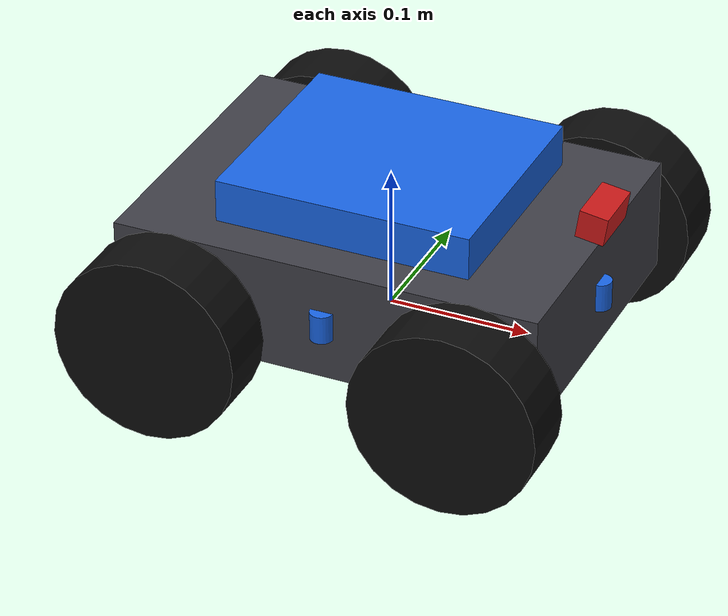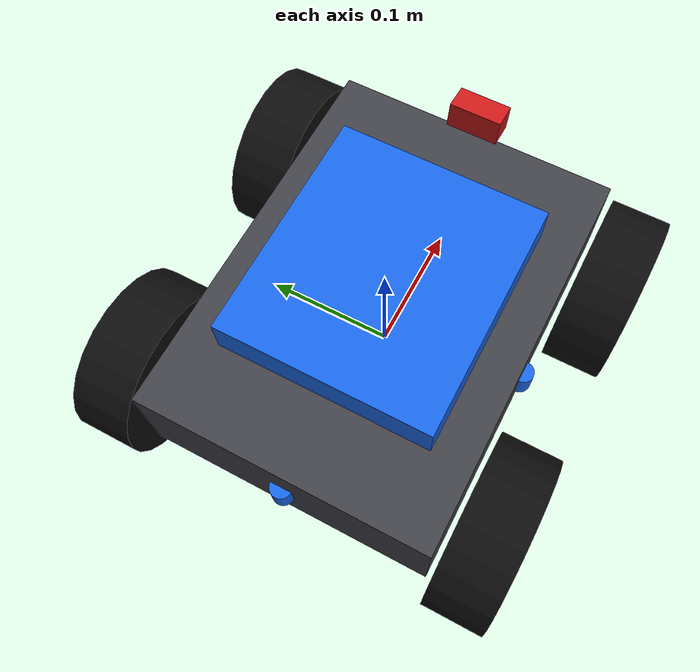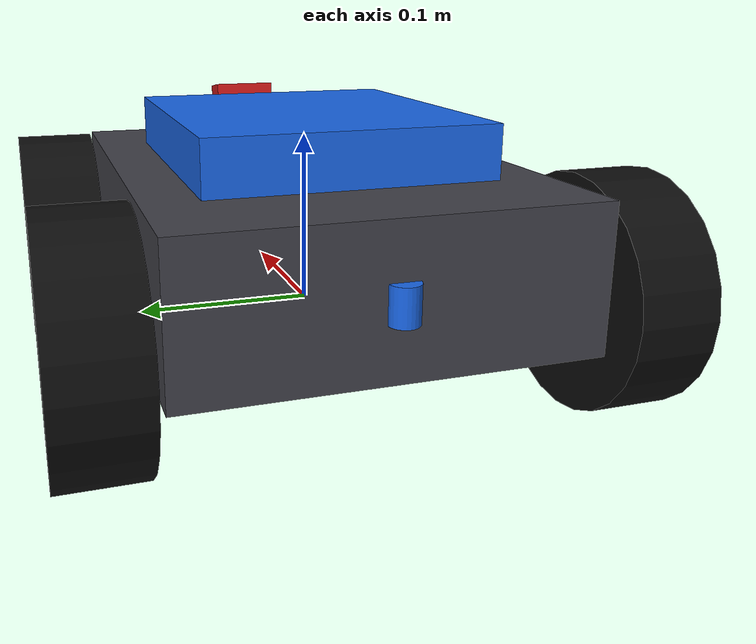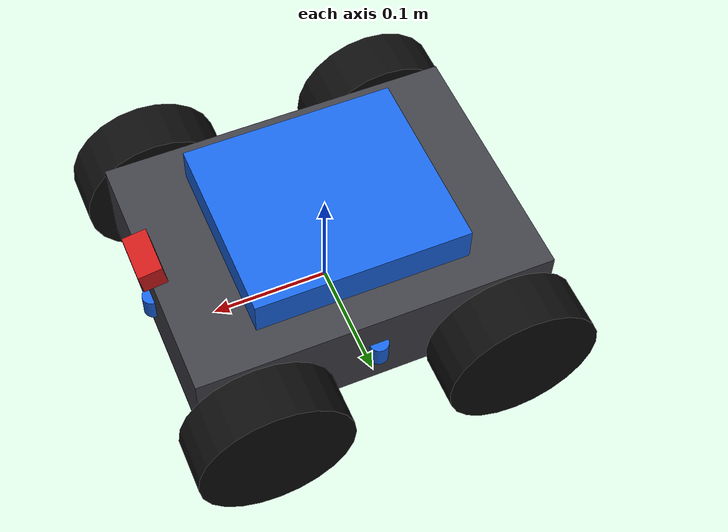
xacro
<?xml version="1.0"?>
<robot name="delivery_robot" xmlns:xacro="http://www.ros.org/wiki/xacro">

  <xacro:include filename="$(find delivery_robot_description)/urdf/materials.xacro"/>
  <xacro:include filename="$(find delivery_robot_description)/urdf/chassis.xacro"/>
  <xacro:include filename="$(find delivery_robot_description)/urdf/wheels.xacro"/>
  <xacro:include filename="$(find delivery_robot_description)/urdf/sensors.xacro"/>

  <!-- Gazebo diff-drive (skid steer, 4 wheel) plugin -->
  <gazebo>
    <plugin filename="gz-sim-diff-drive-system" name="gz::sim::systems::DiffDrive">
      <left_joint>front_left_wheel_joint</left_joint>
      <left_joint>rear_left_wheel_joint</left_joint>
      <right_joint>front_right_wheel_joint</right_joint>
      <right_joint>rear_right_wheel_joint</right_joint>
      <wheel_separation>0.275</wheel_separation>
      <wheel_radius>0.065</wheel_radius>
      <odom_publish_frequency>30</odom_publish_frequency>
      <topic>cmd_vel</topic>
      <odom_topic>odom</odom_topic>
      <tf_topic>tf</tf_topic>
      <frame_id>odom</frame_id>
      <child_frame_id>base_link</child_frame_id>
    </plugin>

    <plugin filename="gz-sim-joint-state-publisher-system" name="gz::sim::systems::JointStatePublisher"/>
  </gazebo>

  <!-- Camera sensor -->
  <gazebo reference="camera_link">
    <sensor name="camera_sensor" type="camera">
      <camera>
        <horizontal_fov>1.089</horizontal_fov>
        <image><width>640</width><height>480</height><format>R8G8B8</format></image>
        <clip><near>0.05</near><far>10.0</far></clip>
      </camera>
      <always_on>true</always_on>
      <update_rate>15</update_rate>
      <visualize>true</visualize>
      <topic>camera/image_raw</topic>
    </sensor>
  </gazebo>

  <!-- Ultrasonic sensors as gpu_lidar with 1 ray (range-only) -->
  <xacro:macro name="us_gazebo" params="prefix">
    <gazebo reference="${prefix}_us_link">
      <sensor name="${prefix}_us_sensor" type="gpu_lidar">
        <update_rate>10</update_rate>
        <topic>ultrasonic_${prefix}</topic>
        <lidar>
          <scan>
            <horizontal><samples>1</samples><min_angle>0</min_angle><max_angle>0</max_angle></horizontal>
          </scan>
          <range><min>0.02</min><max>2.0</max><resolution>0.01</resolution></range>
        </lidar>
        <always_on>true</always_on>
        <visualize>false</visualize>
      </sensor>
    </gazebo>
  </xacro:macro>

  <xacro:us_gazebo prefix="front"/>
  <xacro:us_gazebo prefix="rear"/>
  <xacro:us_gazebo prefix="left"/>
  <xacro:us_gazebo prefix="right"/>

</robot>

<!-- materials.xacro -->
<robot xmlns:xacro="http://www.ros.org/wiki/xacro">
  <material name="chassis_grey"><color rgba="0.25 0.25 0.28 1.0"/></material>
  <material name="wheel_black"><color rgba="0.05 0.05 0.05 1.0"/></material>
  <material name="sensor_blue"><color rgba="0.1 0.4 0.9 1.0"/></material>
  <material name="camera_red"><color rgba="0.8 0.1 0.1 1.0"/></material>
</robot>

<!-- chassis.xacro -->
<robot xmlns:xacro="http://www.ros.org/wiki/xacro">

  <xacro:property name="chassis_length" value="0.30"/>
  <xacro:property name="chassis_width"  value="0.22"/>
  <xacro:property name="chassis_height" value="0.08"/>
  <xacro:property name="chassis_mass"   value="2.0"/>

  <link name="base_link"/>

  <joint name="base_to_chassis" type="fixed">
    <parent link="base_link"/>
    <child link="chassis_link"/>
    <origin xyz="0 0 0.045" rpy="0 0 0"/>
  </joint>

  <link name="chassis_link">
    <visual>
      <geometry><box size="${chassis_length} ${chassis_width} ${chassis_height}"/></geometry>
      <material name="chassis_grey"/>
    </visual>
    <collision>
      <geometry><box size="${chassis_length} ${chassis_width} ${chassis_height}"/></geometry>
    </collision>
    <inertial>
      <mass value="${chassis_mass}"/>
      <inertia ixx="0.01" ixy="0.0" ixz="0.0" iyy="0.02" iyz="0.0" izz="0.02"/>
    </inertial>
  </link>

  <!-- Payload tray on top -->
  <joint name="chassis_to_tray" type="fixed">
    <parent link="chassis_link"/>
    <child link="tray_link"/>
    <origin xyz="0 0 0.055" rpy="0 0 0"/>
  </joint>

  <link name="tray_link">
    <visual>
      <geometry><box size="0.18 0.16 0.03"/></geometry>
      <material name="sensor_blue"/>
    </visual>
    <collision>
      <geometry><box size="0.18 0.16 0.03"/></geometry>
    </collision>
    <inertial>
      <mass value="0.2"/>
      <inertia ixx="0.0005" ixy="0.0" ixz="0.0" iyy="0.0005" iyz="0.0" izz="0.0005"/>
    </inertial>
  </link>

</robot>

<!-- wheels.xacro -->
<robot xmlns:xacro="http://www.ros.org/wiki/xacro">

  <xacro:property name="wheel_radius" value="0.065"/>
  <xacro:property name="wheel_width"  value="0.045"/>
  <xacro:property name="wheel_mass"   value="0.15"/>
  <xacro:property name="chassis_length" value="0.30"/>
  <xacro:property name="track_half" value="0.1375"/>
  <xacro:property name="wheelbase_half" value="0.105"/>

  <xacro:macro name="wheel" params="prefix x_pos y_pos">
    <link name="${prefix}_wheel_link">
      <visual>
        <origin xyz="0 0 0" rpy="1.5708 0 0"/>
        <geometry><cylinder radius="${wheel_radius}" length="${wheel_width}"/></geometry>
        <material name="wheel_black"/>
      </visual>
      <collision>
        <origin xyz="0 0 0" rpy="1.5708 0 0"/>
        <geometry><cylinder radius="${wheel_radius}" length="${wheel_width}"/></geometry>
      </collision>
      <inertial>
        <mass value="${wheel_mass}"/>
        <inertia ixx="0.0003" ixy="0.0" ixz="0.0" iyy="0.0003" iyz="0.0" izz="0.0004"/>
      </inertial>
    </link>

    <joint name="${prefix}_wheel_joint" type="continuous">
      <parent link="chassis_link"/>
      <child link="${prefix}_wheel_link"/>
      <origin xyz="${x_pos} ${y_pos} -0.02" rpy="0 0 0"/>
      <axis xyz="0 1 0"/>
    </joint>
  </xacro:macro>

  <xacro:wheel prefix="front_left"  x_pos="${wheelbase_half}"  y_pos="${track_half}"/>
  <xacro:wheel prefix="front_right" x_pos="${wheelbase_half}"  y_pos="-${track_half}"/>
  <xacro:wheel prefix="rear_left"   x_pos="-${wheelbase_half}" y_pos="${track_half}"/>
  <xacro:wheel prefix="rear_right"  x_pos="-${wheelbase_half}" y_pos="-${track_half}"/>

</robot>

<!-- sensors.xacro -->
<robot xmlns:xacro="http://www.ros.org/wiki/xacro">

  <!-- Camera: front-center, top -->
  <link name="camera_link">
    <visual>
      <geometry><box size="0.02 0.04 0.02"/></geometry>
      <material name="camera_red"/>
    </visual>
    <collision>
      <geometry><box size="0.02 0.04 0.02"/></geometry>
    </collision>
    <inertial>
      <mass value="0.05"/>
      <inertia ixx="1e-5" ixy="0" ixz="0" iyy="1e-5" iyz="0" izz="1e-5"/>
    </inertial>
  </link>
  <joint name="camera_joint" type="fixed">
    <parent link="chassis_link"/>
    <child link="camera_link"/>
    <origin xyz="0.15 0 0.06" rpy="0 0.15 0"/>
  </joint>
  <link name="camera_optical_link"/>
  <joint name="camera_optical_joint" type="fixed">
    <parent link="camera_link"/>
    <child link="camera_optical_link"/>
    <origin xyz="0 0 0" rpy="-1.5708 0 -1.5708"/>
  </joint>

  <!-- Ultrasonic macro -->
  <xacro:macro name="ultrasonic" params="prefix x_pos y_pos yaw">
    <link name="${prefix}_us_link">
      <visual>
        <geometry><cylinder radius="0.008" length="0.02"/></geometry>
        <material name="sensor_blue"/>
      </visual>
      <collision>
        <geometry><cylinder radius="0.008" length="0.02"/></geometry>
      </collision>
      <inertial>
        <mass value="0.01"/>
        <inertia ixx="1e-6" ixy="0" ixz="0" iyy="1e-6" iyz="0" izz="1e-6"/>
      </inertial>
    </link>
    <joint name="${prefix}_us_joint" type="fixed">
      <parent link="chassis_link"/>
      <child link="${prefix}_us_link"/>
      <origin xyz="${x_pos} ${y_pos} 0.0" rpy="0 0 ${yaw}"/>
    </joint>
  </xacro:macro>

  <xacro:ultrasonic prefix="front" x_pos="0.15"  y_pos="0.0"   yaw="0"/>
  <xacro:ultrasonic prefix="rear"  x_pos="-0.15" y_pos="0.0"   yaw="3.1416"/>
  <xacro:ultrasonic prefix="left"  x_pos="0.0"   y_pos="0.11"  yaw="1.5708"/>
  <xacro:ultrasonic prefix="right" x_pos="0.0"   y_pos="-0.11" yaw="-1.5708"/>

</robot>
